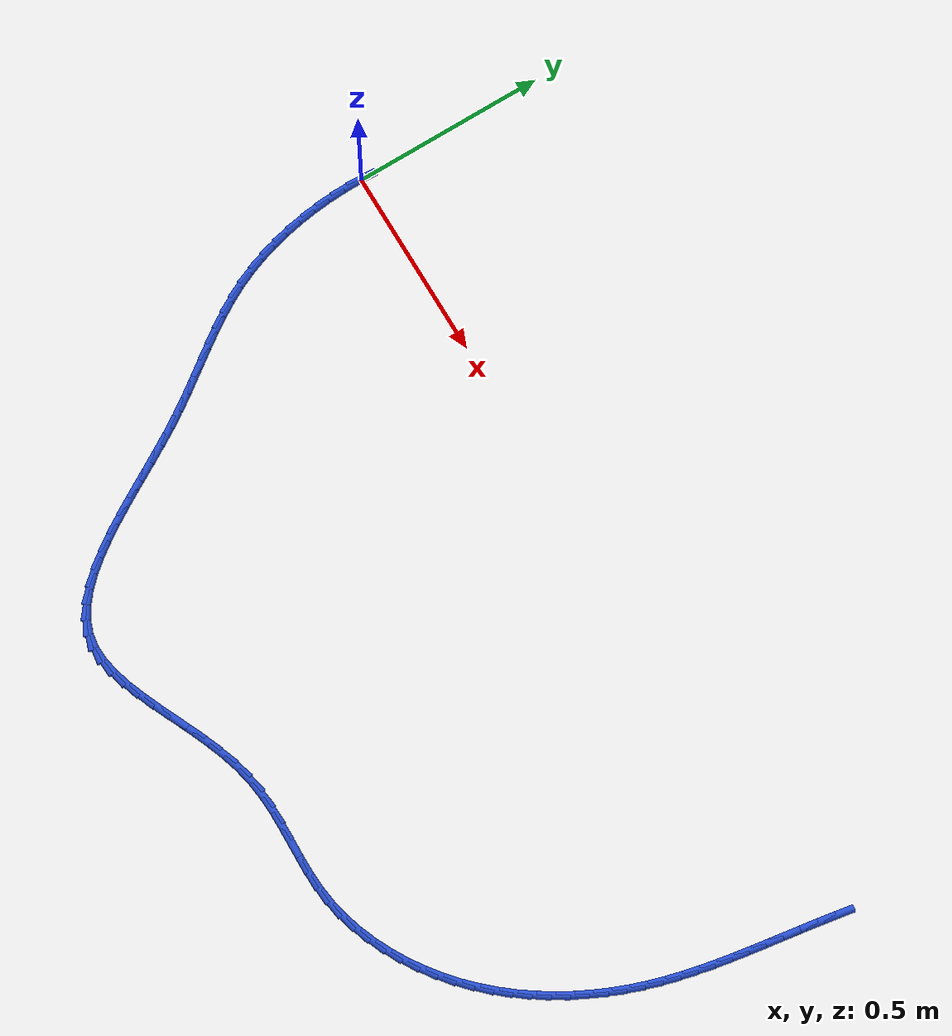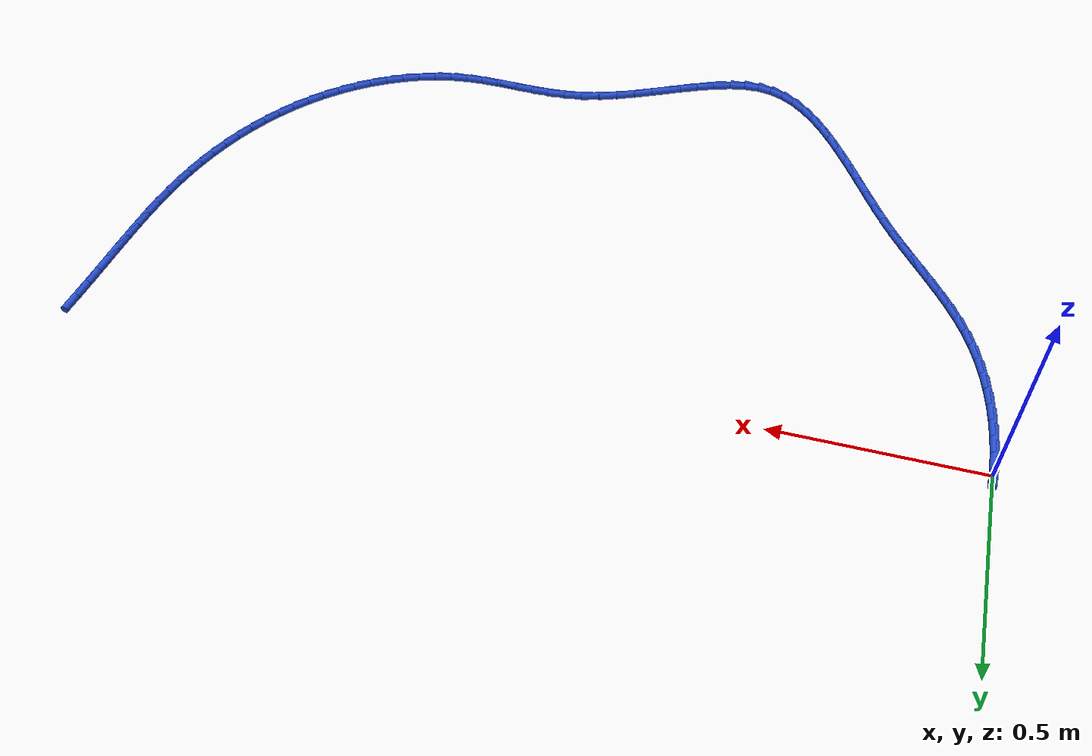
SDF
<sdf version="1.6">
 <world name="default">
  <model name="ground_plane">
   <static>1</static>
   <link name="link">
    <collision name="collision">
     <geometry><plane><normal>0 0 1</normal><size>100 100</size></plane></geometry>
     <surface><friction><ode><mu>100</mu><mu2>50</mu2></ode></friction></surface>
    </collision>
    <visual name="visual">
     <cast_shadows>0</cast_shadows>
     <geometry><plane><normal>0 0 1</normal><size>100 100</size></plane></geometry>
     <material>
      <script><uri>file://media/materials/scripts/gazebo.material</uri><name>Gazebo/WhiteGlow</name></script>
     </material>
    </visual>
   </link>
  </model>
  <model name="line">
   <link name="link_0">
    <pose>-2.0816681711721685e-17 0.0 0.01 0 1.57 1.5288816077750744</pose>
    <collision name="collision">
     <geometry><cylinder><radius>0.01</radius><length>0.08</length></cylinder></geometry>
    </collision>
    <visual name="visual">
     <material>
      <script><name>Gazebo/Blue</name><uri>file://media/materials/scripts/gazebo.material</uri></script>
     </material>
     <geometry><cylinder><radius>0.01</radius><length>0.08</length></cylinder></geometry>
    </visual>
   </link>
   <link name="link_81">
    <pose>2.1590010995690694 0.039165669165966054 0.01 0 1.57 1.4089335555701574</pose>
    <collision name="collision">
     <geometry><cylinder><radius>0.01</radius><length>0.08</length></cylinder></geometry>
    </collision>
    <visual name="visual">
     <material>
      <script><name>Gazebo/Blue</name><uri>file://media/materials/scripts/gazebo.material</uri></script>
     </material>
     <geometry><cylinder><radius>0.01</radius><length>0.08</length></cylinder></geometry>
    </visual>
   </link>
   <link name="link_82">
    <pose>2.151374242094792 -0.007541390317497813 0.01 0 1.57 1.4194254931431838</pose>
    <collision name="collision">
     <geometry><cylinder><radius>0.01</radius><length>0.08</length></cylinder></geometry>
    </collision>
    <visual name="visual">
     <material>
      <script><name>Gazebo/Blue</name><uri>file://media/materials/scripts/gazebo.material</uri></script>
     </material>
     <geometry><cylinder><radius>0.01</radius><length>0.08</length></cylinder></geometry>
    </visual>
   </link>
   <link name="link_83">
    <pose>2.1443579429356454 -0.053538551705542614 0.01 0 1.57 1.4251304497442707</pose>
    <collision name="collision">
     <geometry><cylinder><radius>0.01</radius><length>0.08</length></cylinder></geometry>
    </collision>
    <visual name="visual">
     <material>
      <script><name>Gazebo/Blue</name><uri>file://media/materials/scripts/gazebo.material</uri></script>
     </material>
     <geometry><cylinder><radius>0.01</radius><length>0.08</length></cylinder></geometry>
    </visual>
   </link>
   <link name="link_84">
    <pose>2.13770742133233 -0.09887117817122365 0.01 0 1.57 1.4257908464061726</pose>
    <collision name="collision">
     <geometry><cylinder><radius>0.01</radius><length>0.08</length></cylinder></geometry>
    </collision>
    <visual name="visual">
     <material>
      <script><name>Gazebo/Blue</name><uri>file://media/materials/scripts/gazebo.material</uri></script>
     </material>
     <geometry><cylinder><radius>0.01</radius><length>0.08</length></cylinder></geometry>
    </visual>
   </link>
   <link name="link_85">
    <pose>2.131177896525548 -0.1435846328875956 0.01 0 1.57 1.4211894200970407</pose>
    <collision name="collision">
     <geometry><cylinder><radius>0.01</radius><length>0.08</length></cylinder></geometry>
    </collision>
    <visual name="visual">
     <material>
      <script><name>Gazebo/Blue</name><uri>file://media/materials/scripts/gazebo.material</uri></script>
     </material>
     <geometry><cylinder><radius>0.01</radius><length>0.08</length></cylinder></geometry>
    </visual>
   </link>
   <link name="link_86">
    <pose>2.124524587756 -0.18772427902771288 0.01 0 1.57 1.41115566940186</pose>
    <collision name="collision">
     <geometry><cylinder><radius>0.01</radius><length>0.08</length></cylinder></geometry>
    </collision>
    <visual name="visual">
     <material>
      <script><name>Gazebo/Blue</name><uri>file://media/materials/scripts/gazebo.material</uri></script>
     </material>
     <geometry><cylinder><radius>0.01</radius><length>0.08</length></cylinder></geometry>
    </visual>
   </link>
   <link name="link_87">
    <pose>2.1175027142643867 -0.23133547976463087 0.01 0 1.57 1.3955760839729843</pose>
    <collision name="collision">
     <geometry><cylinder><radius>0.01</radius><length>0.08</length></cylinder></geometry>
    </collision>
    <visual name="visual">
     <material>
      <script><name>Gazebo/Blue</name><uri>file://media/materials/scripts/gazebo.material</uri></script>
     </material>
     <geometry><cylinder><radius>0.01</radius><length>0.08</length></cylinder></geometry>
    </visual>
   </link>
   <link name="link_88">
    <pose>2.10986749529141 -0.27446359827140265 0.01 0 1.57 1.3744085524803331</pose>
    <collision name="collision">
     <geometry><cylinder><radius>0.01</radius><length>0.08</length></cylinder></geometry>
    </collision>
    <visual name="visual">
     <material>
      <script><name>Gazebo/Blue</name><uri>file://media/materials/scripts/gazebo.material</uri></script>
     </material>
     <geometry><cylinder><radius>0.01</radius><length>0.08</length></cylinder></geometry>
    </visual>
   </link>
   <link name="link_89">
    <pose>2.1013741500777714 -0.31715399772108344 0.01 0 1.57 1.3477005683270946</pose>
    <collision name="collision">
     <geometry><cylinder><radius>0.01</radius><length>0.08</length></cylinder></geometry>
    </collision>
    <visual name="visual">
     <material>
      <script><name>Gazebo/Blue</name><uri>file://media/materials/scripts/gazebo.material</uri></script>
     </material>
     <geometry><cylinder><radius>0.01</radius><length>0.08</length></cylinder></geometry>
    </visual>
   </link>
   <link name="link_90">
    <pose>2.0917778978641706 -0.35945204128672786 0.01 0 1.57 1.315609749769885</pose>
    <collision name="collision">
     <geometry><cylinder><radius>0.01</radius><length>0.08</length></cylinder></geometry>
    </collision>
    <visual name="visual">
     <material>
      <script><name>Gazebo/Blue</name><uri>file://media/materials/scripts/gazebo.material</uri></script>
     </material>
     <geometry><cylinder><radius>0.01</radius><length>0.08</length></cylinder></geometry>
    </visual>
   </link>
   <link name="link_91">
    <pose>2.0808339578913104 -0.4014030921413906 0.01 0 1.57 1.2784238359968025</pose>
    <collision name="collision">
     <geometry><cylinder><radius>0.01</radius><length>0.08</length></cylinder></geometry>
    </collision>
    <visual name="visual">
     <material>
      <script><name>Gazebo/Blue</name><uri>file://media/materials/scripts/gazebo.material</uri></script>
     </material>
     <geometry><cylinder><radius>0.01</radius><length>0.08</length></cylinder></geometry>
    </visual>
   </link>
   <link name="link_92">
    <pose>2.0682975493998907 -0.4430525134581267 0.01 0 1.57 1.236588635639744</pose>
    <collision name="collision">
     <geometry><cylinder><radius>0.01</radius><length>0.08</length></cylinder></geometry>
    </collision>
    <visual name="visual">
     <material>
      <script><name>Gazebo/Blue</name><uri>file://media/materials/scripts/gazebo.material</uri></script>
     </material>
     <geometry><cylinder><radius>0.01</radius><length>0.08</length></cylinder></geometry>
    </visual>
   </link>
   <link name="link_93">
    <pose>2.05392479256281 -0.4844447644938634 0.01 0 1.57 1.191686827820741</pose>
    <collision name="collision">
     <geometry><cylinder><radius>0.01</radius><length>0.08</length></cylinder></geometry>
    </collision>
    <visual name="visual">
     <material>
      <script><name>Gazebo/Blue</name><uri>file://media/materials/scripts/gazebo.material</uri></script>
     </material>
     <geometry><cylinder><radius>0.01</radius><length>0.08</length></cylinder></geometry>
    </visual>
   </link>
   <link name="link_94">
    <pose>2.0375515314099215 -0.5255443165994361 0.01 0 1.57 1.1456237448678201</pose>
    <collision name="collision">
     <geometry><cylinder><radius>0.01</radius><length>0.08</length></cylinder></geometry>
    </collision>
    <visual name="visual">
     <material>
      <script><name>Gazebo/Blue</name><uri>file://media/materials/scripts/gazebo.material</uri></script>
     </material>
     <geometry><cylinder><radius>0.01</radius><length>0.08</length></cylinder></geometry>
    </visual>
   </link>
   <link name="link_95">
    <pose>2.0191547630249858 -0.566174020566265 0.01 0 1.57 1.098286914952589</pose>
    <collision name="collision">
     <geometry><cylinder><radius>0.01</radius><length>0.08</length></cylinder></geometry>
    </collision>
    <visual name="visual">
     <material>
      <script><name>Gazebo/Blue</name><uri>file://media/materials/scripts/gazebo.material</uri></script>
     </material>
     <geometry><cylinder><radius>0.01</radius><length>0.08</length></cylinder></geometry>
    </visual>
   </link>
   <link name="link_96">
    <pose>1.9987259427390036 -0.6061422210521415 0.01 0 1.57 1.0493796912006637</pose>
    <collision name="collision">
     <geometry><cylinder><radius>0.01</radius><length>0.08</length></cylinder></geometry>
    </collision>
    <visual name="visual">
     <material>
      <script><name>Gazebo/Blue</name><uri>file://media/materials/scripts/gazebo.material</uri></script>
     </material>
     <geometry><cylinder><radius>0.01</radius><length>0.08</length></cylinder></geometry>
    </visual>
   </link>
   <link name="link_97">
    <pose>1.9762565258829754 -0.6452572627148556 0.01 0 1.57 0.9986258800181697</pose>
    <collision name="collision">
     <geometry><cylinder><radius>0.01</radius><length>0.08</length></cylinder></geometry>
    </collision>
    <visual name="visual">
     <material>
      <script><name>Gazebo/Blue</name><uri>file://media/materials/scripts/gazebo.material</uri></script>
     </material>
     <geometry><cylinder><radius>0.01</radius><length>0.08</length></cylinder></geometry>
    </visual>
   </link>
   <link name="link_98">
    <pose>1.9517379677879008 -0.6833274902121982 0.01 0 1.57 0.9457738173689354</pose>
    <collision name="collision">
     <geometry><cylinder><radius>0.01</radius><length>0.08</length></cylinder></geometry>
    </collision>
    <visual name="visual">
     <material>
      <script><name>Gazebo/Blue</name><uri>file://media/materials/scripts/gazebo.material</uri></script>
     </material>
     <geometry><cylinder><radius>0.01</radius><length>0.08</length></cylinder></geometry>
    </visual>
   </link>
   <link name="link_99">
    <pose>1.9251617237847802 -0.7201612482019606 0.01 0 1.57 0.8906032750269344</pose>
    <collision name="collision">
     <geometry><cylinder><radius>0.01</radius><length>0.08</length></cylinder></geometry>
    </collision>
    <visual name="visual">
     <material>
      <script><name>Gazebo/Blue</name><uri>file://media/materials/scripts/gazebo.material</uri></script>
     </material>
     <geometry><cylinder><radius>0.01</radius><length>0.08</length></cylinder></geometry>
    </visual>
   </link>
   <link name="link_100">
    <pose>1.8965192492046137 -0.7555668813419335 0.01 0 1.57 0.8329352769392533</pose>
    <collision name="collision">
     <geometry><cylinder><radius>0.01</radius><length>0.08</length></cylinder></geometry>
    </collision>
    <visual name="visual">
     <material>
      <script><name>Gazebo/Blue</name><uri>file://media/materials/scripts/gazebo.material</uri></script>
     </material>
     <geometry><cylinder><radius>0.01</radius><length>0.08</length></cylinder></geometry>
    </visual>
   </link>
   <link name="link_101">
    <pose>1.8658019993784003 -0.7893527342899083 0.01 0 1.57 0.7726446674631863</pose>
    <collision name="collision">
     <geometry><cylinder><radius>0.01</radius><length>0.08</length></cylinder></geometry>
    </collision>
    <visual name="visual">
     <material>
      <script><name>Gazebo/Blue</name><uri>file://media/materials/scripts/gazebo.material</uri></script>
     </material>
     <geometry><cylinder><radius>0.01</radius><length>0.08</length></cylinder></geometry>
    </visual>
   </link>
   <link name="link_102">
    <pose>1.8330014296371424 -0.8213271517036749 0.01 0 1.57 0.7100305394505303</pose>
    <collision name="collision">
     <geometry><cylinder><radius>0.01</radius><length>0.08</length></cylinder></geometry>
    </collision>
    <visual name="visual">
     <material>
      <script><name>Gazebo/Blue</name><uri>file://media/materials/scripts/gazebo.material</uri></script>
     </material>
     <geometry><cylinder><radius>0.01</radius><length>0.08</length></cylinder></geometry>
    </visual>
   </link>
   <link name="link_103">
    <pose>1.7981407699879932 -0.8512927391685631 0.01 0 1.57 0.6464957723707402</pose>
    <collision name="collision">
     <geometry><cylinder><radius>0.01</radius><length>0.08</length></cylinder></geometry>
    </collision>
    <visual name="visual">
     <material>
      <script><name>Gazebo/Blue</name><uri>file://media/materials/scripts/gazebo.material</uri></script>
     </material>
     <geometry><cylinder><radius>0.01</radius><length>0.08</length></cylinder></geometry>
    </visual>
   </link>
   <link name="link_104">
    <pose>1.7613944774682404 -0.8790247879747101 0.01 0 1.57 0.5818012767535212</pose>
    <collision name="collision">
     <geometry><cylinder><radius>0.01</radius><length>0.08</length></cylinder></geometry>
    </collision>
    <visual name="visual">
     <material>
      <script><name>Gazebo/Blue</name><uri>file://media/materials/scripts/gazebo.material</uri></script>
     </material>
     <geometry><cylinder><radius>0.01</radius><length>0.08</length></cylinder></geometry>
    </visual>
   </link>
   <link name="link_105">
    <pose>1.722981950960954 -0.9042904721144318 0.01 0 1.57 0.5151600913907749</pose>
    <collision name="collision">
     <geometry><cylinder><radius>0.01</radius><length>0.08</length></cylinder></geometry>
    </collision>
    <visual name="visual">
     <material>
      <script><name>Gazebo/Blue</name><uri>file://media/materials/scripts/gazebo.material</uri></script>
     </material>
     <geometry><cylinder><radius>0.01</radius><length>0.08</length></cylinder></geometry>
    </visual>
   </link>
   <link name="link_106">
    <pose>1.6831225966959757 -0.9268569642530877 0.01 0 1.57 0.4457940355793056</pose>
    <collision name="collision">
     <geometry><cylinder><radius>0.01</radius><length>0.08</length></cylinder></geometry>
    </collision>
    <visual name="visual">
     <material>
      <script><name>Gazebo/Blue</name><uri>file://media/materials/scripts/gazebo.material</uri></script>
     </material>
     <geometry><cylinder><radius>0.01</radius><length>0.08</length></cylinder></geometry>
    </visual>
   </link>
   <link name="link_107">
    <pose>1.6420358209031483 -0.9464914370560352 0.01 0 1.57 0.37294139570609786</pose>
    <collision name="collision">
     <geometry><cylinder><radius>0.01</radius><length>0.08</length></cylinder></geometry>
    </collision>
    <visual name="visual">
     <material>
      <script><name>Gazebo/Blue</name><uri>file://media/materials/scripts/gazebo.material</uri></script>
     </material>
     <geometry><cylinder><radius>0.01</radius><length>0.08</length></cylinder></geometry>
    </visual>
   </link>
   <link name="link_108">
    <pose>1.599941029812313 -0.9629610631886335 0.01 0 1.57 0.2958779203071806</pose>
    <collision name="collision">
     <geometry><cylinder><radius>0.01</radius><length>0.08</length></cylinder></geometry>
    </collision>
    <visual name="visual">
     <material>
      <script><name>Gazebo/Blue</name><uri>file://media/materials/scripts/gazebo.material</uri></script>
     </material>
     <geometry><cylinder><radius>0.01</radius><length>0.08</length></cylinder></geometry>
    </visual>
   </link>
   <link name="link_109">
    <pose>1.5570576296533105 -0.9760330153162409 0.01 0 1.57 0.21395592045569675</pose>
    <collision name="collision">
     <geometry><cylinder><radius>0.01</radius><length>0.08</length></cylinder></geometry>
    </collision>
    <visual name="visual">
     <material>
      <script><name>Gazebo/Blue</name><uri>file://media/materials/scripts/gazebo.material</uri></script>
     </material>
     <geometry><cylinder><radius>0.01</radius><length>0.08</length></cylinder></geometry>
    </visual>
   </link>
   <link name="link_110">
    <pose>1.5136050266559835 -0.9854744661042159 0.01 0 1.57 0.12707546292350871</pose>
    <collision name="collision">
     <geometry><cylinder><radius>0.01</radius><length>0.08</length></cylinder></geometry>
    </collision>
    <visual name="visual">
     <material>
      <script><name>Gazebo/Blue</name><uri>file://media/materials/scripts/gazebo.material</uri></script>
     </material>
     <geometry><cylinder><radius>0.01</radius><length>0.08</length></cylinder></geometry>
    </visual>
   </link>
   <link name="link_111">
    <pose>1.4697997216382932 -0.9910712036956041 0.01 0 1.57 0.04863886634835172</pose>
    <collision name="collision">
     <geometry><cylinder><radius>0.01</radius><length>0.08</length></cylinder></geometry>
    </collision>
    <visual name="visual">
     <material>
      <script><name>Gazebo/Blue</name><uri>file://media/materials/scripts/gazebo.material</uri></script>
     </material>
     <geometry><cylinder><radius>0.01</radius><length>0.08</length></cylinder></geometry>
    </visual>
   </link>
   <link name="link_112">
    <pose>1.425763674272286 -0.9932147577479749 0.01 0 1.57 -0.004369041545981098</pose>
    <collision name="collision">
     <geometry><cylinder><radius>0.01</radius><length>0.08</length></cylinder></geometry>
    </collision>
    <visual name="visual">
     <material>
      <script><name>Gazebo/Blue</name><uri>file://media/materials/scripts/gazebo.material</uri></script>
     </material>
     <geometry><cylinder><radius>0.01</radius><length>0.08</length></cylinder></geometry>
    </visual>
   </link>
   <link name="link_113">
    <pose>1.3815057313543135 -0.9930213917262677 0.01 0 1.57 -0.03082299035357127</pose>
    <collision name="collision">
     <geometry><cylinder><radius>0.01</radius><length>0.08</length></cylinder></geometry>
    </collision>
    <visual name="visual">
     <material>
      <script><name>Gazebo/Blue</name><uri>file://media/materials/scripts/gazebo.material</uri></script>
     </material>
     <geometry><cylinder><radius>0.01</radius><length>0.08</length></cylinder></geometry>
    </visual>
   </link>
   <link name="link_114">
    <pose>1.337028082428873 -0.9916500232623652 0.01 0 1.57 -0.03109967165181631</pose>
    <collision name="collision">
     <geometry><cylinder><radius>0.01</radius><length>0.08</length></cylinder></geometry>
    </collision>
    <visual name="visual">
     <material>
      <script><name>Gazebo/Blue</name><uri>file://media/materials/scripts/gazebo.material</uri></script>
     </material>
     <geometry><cylinder><radius>0.01</radius><length>0.08</length></cylinder></geometry>
    </visual>
   </link>
   <link name="link_115">
    <pose>1.292332917040464 -0.9902595699881501 0.01 0 1.57 -0.005580385301238787</pose>
    <collision name="collision">
     <geometry><cylinder><radius>0.01</radius><length>0.08</length></cylinder></geometry>
    </collision>
    <visual name="visual">
     <material>
      <script><name>Gazebo/Blue</name><uri>file://media/materials/scripts/gazebo.material</uri></script>
     </material>
     <geometry><cylinder><radius>0.01</radius><length>0.08</length></cylinder></geometry>
    </visual>
   </link>
   <link name="link_116">
    <pose>1.2474224247335834 -0.9900089495355052 0.01 0 1.57 0.0453581691002773</pose>
    <collision name="collision">
     <geometry><cylinder><radius>0.01</radius><length>0.08</length></cylinder></geometry>
    </collision>
    <visual name="visual">
     <material>
      <script><name>Gazebo/Blue</name><uri>file://media/materials/scripts/gazebo.material</uri></script>
     </material>
     <geometry><cylinder><radius>0.01</radius><length>0.08</length></cylinder></geometry>
    </visual>
   </link>
   <link name="link_117">
    <pose>1.2022987950527315 -0.992057079536313 0.01 0 1.57 0.12085621920830597</pose>
    <collision name="collision">
     <geometry><cylinder><radius>0.01</radius><length>0.08</length></cylinder></geometry>
    </collision>
    <visual name="visual">
     <material>
      <script><name>Gazebo/Blue</name><uri>file://media/materials/scripts/gazebo.material</uri></script>
     </material>
     <geometry><cylinder><radius>0.01</radius><length>0.08</length></cylinder></geometry>
    </visual>
   </link>
   <link name="link_118">
    <pose>1.1569642175424044 -0.9975628776224555 0.01 0 1.57 0.21632979802707036</pose>
    <collision name="collision">
     <geometry><cylinder><radius>0.01</radius><length>0.08</length></cylinder></geometry>
    </collision>
    <visual name="visual">
     <material>
      <script><name>Gazebo/Blue</name><uri>file://media/materials/scripts/gazebo.material</uri></script>
     </material>
     <geometry><cylinder><radius>0.01</radius><length>0.08</length></cylinder></geometry>
    </visual>
   </link>
   <link name="link_119">
    <pose>1.1114304342638721 -1.0075697839776083 0.01 0 1.57 0.3024851590970225</pose>
    <collision name="collision">
     <geometry><cylinder><radius>0.01</radius><length>0.08</length></cylinder></geometry>
    </collision>
    <visual name="visual">
     <material>
      <script><name>Gazebo/Blue</name><uri>file://media/materials/scripts/gazebo.material</uri></script>
     </material>
     <geometry><cylinder><radius>0.01</radius><length>0.08</length></cylinder></geometry>
    </visual>
   </link>
   <link name="link_120">
    <pose>1.065818184696807 -1.0218036023927601 0.01 0 1.57 0.3642572645516663</pose>
    <collision name="collision">
     <geometry><cylinder><radius>0.01</radius><length>0.08</length></cylinder></geometry>
    </collision>
    <visual name="visual">
     <material>
      <script><name>Gazebo/Blue</name><uri>file://media/materials/scripts/gazebo.material</uri></script>
     </material>
     <geometry><cylinder><radius>0.01</radius><length>0.08</length></cylinder></geometry>
    </visual>
   </link>
   <link name="link_121">
    <pose>1.0203175676263576 -1.0391516732676727 0.01 0 1.57 0.40425101694398835</pose>
    <collision name="collision">
     <geometry><cylinder><radius>0.01</radius><length>0.08</length></cylinder></geometry>
    </collision>
    <visual name="visual">
     <material>
      <script><name>Gazebo/Blue</name><uri>file://media/materials/scripts/gazebo.material</uri></script>
     </material>
     <geometry><cylinder><radius>0.01</radius><length>0.08</length></cylinder></geometry>
    </visual>
   </link>
   <link name="link_122">
    <pose>0.9751197953811716 -1.0584878757160205 0.01 0 1.57 0.4243697630788925</pose>
    <collision name="collision">
     <geometry><cylinder><radius>0.01</radius><length>0.08</length></cylinder></geometry>
    </collision>
    <visual name="visual">
     <material>
      <script><name>Gazebo/Blue</name><uri>file://media/materials/scripts/gazebo.material</uri></script>
     </material>
     <geometry><cylinder><radius>0.01</radius><length>0.08</length></cylinder></geometry>
    </visual>
   </link>
   <link name="link_123">
    <pose>0.9304160802898921 -1.078686088851478 0.01 0 1.57 0.42522805415831066</pose>
    <collision name="collision">
     <geometry><cylinder><radius>0.01</radius><length>0.08</length></cylinder></geometry>
    </collision>
    <visual name="visual">
     <material>
      <script><name>Gazebo/Blue</name><uri>file://media/materials/scripts/gazebo.material</uri></script>
     </material>
     <geometry><cylinder><radius>0.01</radius><length>0.08</length></cylinder></geometry>
    </visual>
   </link>
   <link name="link_124">
    <pose>0.8863976346811637 -1.0986201917877185 0.01 0 1.57 0.4059577381393803</pose>
    <collision name="collision">
     <geometry><cylinder><radius>0.01</radius><length>0.08</length></cylinder></geometry>
    </collision>
    <visual name="visual">
     <material>
      <script><name>Gazebo/Blue</name><uri>file://media/materials/scripts/gazebo.material</uri></script>
     </material>
     <geometry><cylinder><radius>0.01</radius><length>0.08</length></cylinder></geometry>
    </visual>
   </link>
   <link name="link_125">
    <pose>0.8432556708836308 -1.1171640636384177 0.01 0 1.57 0.3639629057783206</pose>
    <collision name="collision">
     <geometry><cylinder><radius>0.01</radius><length>0.08</length></cylinder></geometry>
    </collision>
    <visual name="visual">
     <material>
      <script><name>Gazebo/Blue</name><uri>file://media/materials/scripts/gazebo.material</uri></script>
     </material>
     <geometry><cylinder><radius>0.01</radius><length>0.08</length></cylinder></geometry>
    </visual>
   </link>
   <link name="link_126">
    <pose>0.8011814012259374 -1.1331915835172495 0.01 0 1.57 0.2946105072904056</pose>
    <collision name="collision">
     <geometry><cylinder><radius>0.01</radius><length>0.08</length></cylinder></geometry>
    </collision>
    <visual name="visual">
     <material>
      <script><name>Gazebo/Blue</name><uri>file://media/materials/scripts/gazebo.material</uri></script>
     </material>
     <geometry><cylinder><radius>0.01</radius><length>0.08</length></cylinder></geometry>
    </visual>
   </link>
   <link name="link_127">
    <pose>0.7603660380367289 -1.145576630537887 0.01 0 1.57 0.19112015199573218</pose>
    <collision name="collision">
     <geometry><cylinder><radius>0.01</radius><length>0.08</length></cylinder></geometry>
    </collision>
    <visual name="visual">
     <material>
      <script><name>Gazebo/Blue</name><uri>file://media/materials/scripts/gazebo.material</uri></script>
     </material>
     <geometry><cylinder><radius>0.01</radius><length>0.08</length></cylinder></geometry>
    </visual>
   </link>
   <link name="link_128">
    <pose>0.7210007936446493 -1.153193083814005 0.01 0 1.57 0.04560885908918106</pose>
    <collision name="collision">
     <geometry><cylinder><radius>0.01</radius><length>0.08</length></cylinder></geometry>
    </collision>
    <visual name="visual">
     <material>
      <script><name>Gazebo/Blue</name><uri>file://media/materials/scripts/gazebo.material</uri></script>
     </material>
     <geometry><cylinder><radius>0.01</radius><length>0.08</length></cylinder></geometry>
    </visual>
   </link>
   <link name="link_129">
    <pose>0.6832768803783434 -1.154914822459279 0.01 0 1.57 -0.14608819776592744</pose>
    <collision name="collision">
     <geometry><cylinder><radius>0.01</radius><length>0.08</length></cylinder></geometry>
    </collision>
    <visual name="visual">
     <material>
      <script><name>Gazebo/Blue</name><uri>file://media/materials/scripts/gazebo.material</uri></script>
     </material>
     <geometry><cylinder><radius>0.01</radius><length>0.08</length></cylinder></geometry>
    </visual>
   </link>
   <link name="link_130">
    <pose>0.6473819329845921 -1.1496333688791796 0.01 0 1.57 -0.35529377994868694</pose>
    <collision name="collision">
     <geometry><cylinder><radius>0.01</radius><length>0.08</length></cylinder></geometry>
    </collision>
    <visual name="visual">
     <material>
      <script><name>Gazebo/Blue</name><uri>file://media/materials/scripts/gazebo.material</uri></script>
     </material>
     <geometry><cylinder><radius>0.01</radius><length>0.08</length></cylinder></geometry>
    </visual>
   </link>
   <link name="link_131">
    <pose>0.6133483954206016 -1.137005588241339 0.01 0 1.57 -0.5373175891952747</pose>
    <collision name="collision">
     <geometry><cylinder><radius>0.01</radius><length>0.08</length></cylinder></geometry>
    </collision>
    <visual name="visual">
     <material>
      <script><name>Gazebo/Blue</name><uri>file://media/materials/scripts/gazebo.material</uri></script>
     </material>
     <geometry><cylinder><radius>0.01</radius><length>0.08</length></cylinder></geometry>
    </visual>
   </link>
   <link name="link_132">
    <pose>0.5809972628114963 -1.1177311320388212 0.01 0 1.57 -0.6836923732522359</pose>
    <collision name="collision">
     <geometry><cylinder><radius>0.01</radius><length>0.08</length></cylinder></geometry>
    </collision>
    <visual name="visual">
     <material>
      <script><name>Gazebo/Blue</name><uri>file://media/materials/scripts/gazebo.material</uri></script>
     </material>
     <geometry><cylinder><radius>0.01</radius><length>0.08</length></cylinder></geometry>
    </visual>
   </link>
   <link name="link_133">
    <pose>0.550134362518805 -1.0925844534853058 0.01 0 1.57 -0.7966929503154708</pose>
    <collision name="collision">
     <geometry><cylinder><radius>0.01</radius><length>0.08</length></cylinder></geometry>
    </collision>
    <visual name="visual">
     <material>
      <script><name>Gazebo/Blue</name><uri>file://media/materials/scripts/gazebo.material</uri></script>
     </material>
     <geometry><cylinder><radius>0.01</radius><length>0.08</length></cylinder></geometry>
    </visual>
   </link>
   <link name="link_134">
    <pose>0.5205655219040579 -1.0623400057944736 0.01 0 1.57 -0.8818480897017545</pose>
    <collision name="collision">
     <geometry><cylinder><radius>0.01</radius><length>0.08</length></cylinder></geometry>
    </collision>
    <visual name="visual">
     <material>
      <script><name>Gazebo/Blue</name><uri>file://media/materials/scripts/gazebo.material</uri></script>
     </material>
     <geometry><cylinder><radius>0.01</radius><length>0.08</length></cylinder></geometry>
    </visual>
   </link>
   <link name="link_135">
    <pose>0.4920965683287846 -1.0277722421800062 0.01 0 1.57 -0.9447155855715328</pose>
    <collision name="collision">
     <geometry><cylinder><radius>0.01</radius><length>0.08</length></cylinder></geometry>
    </collision>
    <visual name="visual">
     <material>
      <script><name>Gazebo/Blue</name><uri>file://media/materials/scripts/gazebo.material</uri></script>
     </material>
     <geometry><cylinder><radius>0.01</radius><length>0.08</length></cylinder></geometry>
    </visual>
   </link>
   <link name="link_136">
    <pose>0.4645333291545146 -0.9896556158555831 0.01 0 1.57 -0.9897502032657819</pose>
    <collision name="collision">
     <geometry><cylinder><radius>0.01</radius><length>0.08</length></cylinder></geometry>
    </collision>
    <visual name="visual">
     <material>
      <script><name>Gazebo/Blue</name><uri>file://media/materials/scripts/gazebo.material</uri></script>
     </material>
     <geometry><cylinder><radius>0.01</radius><length>0.08</length></cylinder></geometry>
    </visual>
   </link>
   <link name="link_137">
    <pose>0.43768163174277874 -0.9487645800348868 0.01 0 1.57 -1.020158801034141</pose>
    <collision name="collision">
     <geometry><cylinder><radius>0.01</radius><length>0.08</length></cylinder></geometry>
    </collision>
    <visual name="visual">
     <material>
      <script><name>Gazebo/Blue</name><uri>file://media/materials/scripts/gazebo.material</uri></script>
     </material>
     <geometry><cylinder><radius>0.01</radius><length>0.08</length></cylinder></geometry>
    </visual>
   </link>
   <link name="link_138">
    <pose>0.4113473034551061 -0.9058735879315974 0.01 0 1.57 -1.038058204549021</pose>
    <collision name="collision">
     <geometry><cylinder><radius>0.01</radius><length>0.08</length></cylinder></geometry>
    </collision>
    <visual name="visual">
     <material>
      <script><name>Gazebo/Blue</name><uri>file://media/materials/scripts/gazebo.material</uri></script>
     </material>
     <geometry><cylinder><radius>0.01</radius><length>0.08</length></cylinder></geometry>
    </visual>
   </link>
   <link name="link_139">
    <pose>0.38533617165302686 -0.8617570927593958 0.01 0 1.57 -1.0446597924616496</pose>
    <collision name="collision">
     <geometry><cylinder><radius>0.01</radius><length>0.08</length></cylinder></geometry>
    </collision>
    <visual name="visual">
     <material>
      <script><name>Gazebo/Blue</name><uri>file://media/materials/scripts/gazebo.material</uri></script>
     </material>
     <geometry><cylinder><radius>0.01</radius><length>0.08</length></cylinder></geometry>
    </visual>
   </link>
   <link name="link_140">
    <pose>0.3594540636980706 -0.8171895477319628 0.01 0 1.57 -1.0403949373067045</pose>
    <collision name="collision">
     <geometry><cylinder><radius>0.01</radius><length>0.08</length></cylinder></geometry>
    </collision>
    <visual name="visual">
     <material>
      <script><name>Gazebo/Blue</name><uri>file://media/materials/scripts/gazebo.material</uri></script>
     </material>
     <geometry><cylinder><radius>0.01</radius><length>0.08</length></cylinder></geometry>
    </visual>
   </link>
   <link name="link_141">
    <pose>0.3335068069517667 -0.7729454060629786 0.01 0 1.57 -1.0249614579978206</pose>
    <collision name="collision">
     <geometry><cylinder><radius>0.01</radius><length>0.08</length></cylinder></geometry>
    </collision>
    <visual name="visual">
     <material>
      <script><name>Gazebo/Blue</name><uri>file://media/materials/scripts/gazebo.material</uri></script>
     </material>
     <geometry><cylinder><radius>0.01</radius><length>0.08</length></cylinder></geometry>
    </visual>
   </link>
   <link name="link_142">
    <pose>0.30730022877564594 -0.7297991209661251 0.01 0 1.57 -0.9976510662692564</pose>
    <collision name="collision">
     <geometry><cylinder><radius>0.01</radius><length>0.08</length></cylinder></geometry>
    </collision>
    <visual name="visual">
     <material>
      <script><name>Gazebo/Blue</name><uri>file://media/materials/scripts/gazebo.material</uri></script>
     </material>
     <geometry><cylinder><radius>0.01</radius><length>0.08</length></cylinder></geometry>
    </visual>
   </link>
   <link name="link_143">
    <pose>0.28064860879723885 -0.6885053482615885 0.01 0 1.57 -0.9674940567342716</pose>
    <collision name="collision">
     <geometry><cylinder><radius>0.01</radius><length>0.08</length></cylinder></geometry>
    </collision>
    <visual name="visual">
     <material>
      <script><name>Gazebo/Blue</name><uri>file://media/materials/scripts/gazebo.material</uri></script>
     </material>
     <geometry><cylinder><radius>0.01</radius><length>0.08</length></cylinder></geometry>
    </visual>
   </link>
   <link name="link_144">
    <pose>0.25360628991820827 -0.6492564534794727 0.01 0 1.57 -0.9466188371662297</pose>
    <collision name="collision">
     <geometry><cylinder><radius>0.01</radius><length>0.08</length></cylinder></geometry>
    </collision>
    <visual name="visual">
     <material>
      <script><name>Gazebo/Blue</name><uri>file://media/materials/scripts/gazebo.material</uri></script>
     </material>
     <geometry><cylinder><radius>0.01</radius><length>0.08</length></cylinder></geometry>
    </visual>
   </link>
   <link name="link_145">
    <pose>0.22649617194734875 -0.6116157724002863 0.01 0 1.57 -0.9367576822646155</pose>
    <collision name="collision">
     <geometry><cylinder><radius>0.01</radius><length>0.08</length></cylinder></geometry>
    </collision>
    <visual name="visual">
     <material>
      <script><name>Gazebo/Blue</name><uri>file://media/materials/scripts/gazebo.material</uri></script>
     </material>
     <geometry><cylinder><radius>0.01</radius><length>0.08</length></cylinder></geometry>
    </visual>
   </link>
   <link name="link_146">
    <pose>0.19965532816868334 -0.5751134428590087 0.01 0 1.57 -0.9388401409076308</pose>
    <collision name="collision">
     <geometry><cylinder><radius>0.01</radius><length>0.08</length></cylinder></geometry>
    </collision>
    <visual name="visual">
     <material>
      <script><name>Gazebo/Blue</name><uri>file://media/materials/scripts/gazebo.material</uri></script>
     </material>
     <geometry><cylinder><radius>0.01</radius><length>0.08</length></cylinder></geometry>
    </visual>
   </link>
   <link name="link_147">
    <pose>0.17342083186623652 -0.5392796026906215 0.01 0 1.57 -0.9535756433300943</pose>
    <collision name="collision">
     <geometry><cylinder><radius>0.01</radius><length>0.08</length></cylinder></geometry>
    </collision>
    <visual name="visual">
     <material>
      <script><name>Gazebo/Blue</name><uri>file://media/materials/scripts/gazebo.material</uri></script>
     </material>
     <geometry><cylinder><radius>0.01</radius><length>0.08</length></cylinder></geometry>
    </visual>
   </link>
   <link name="link_148">
    <pose>0.1481297563240314 -0.5036443897301036 0.01 0 1.57 -0.9813885106985564</pose>
    <collision name="collision">
     <geometry><cylinder><radius>0.01</radius><length>0.08</length></cylinder></geometry>
    </collision>
    <visual name="visual">
     <material>
      <script><name>Gazebo/Blue</name><uri>file://media/materials/scripts/gazebo.material</uri></script>
     </material>
     <geometry><cylinder><radius>0.01</radius><length>0.08</length></cylinder></geometry>
    </visual>
   </link>
   <link name="link_149">
    <pose>0.12411917482609144 -0.4677379418124355 0.01 0 1.57 -1.0223007229271746</pose>
    <collision name="collision">
     <geometry><cylinder><radius>0.01</radius><length>0.08</length></cylinder></geometry>
    </collision>
    <visual name="visual">
     <material>
      <script><name>Gazebo/Blue</name><uri>file://media/materials/scripts/gazebo.material</uri></script>
     </material>
     <geometry><cylinder><radius>0.01</radius><length>0.08</length></cylinder></geometry>
    </visual>
   </link>
   <link name="link_150">
    <pose>0.10172616065644019 -0.431090396772597 0.01 0 1.57 -1.0757697972483622</pose>
    <collision name="collision">
     <geometry><cylinder><radius>0.01</radius><length>0.08</length></cylinder></geometry>
    </collision>
    <visual name="visual">
     <material>
      <script><name>Gazebo/Blue</name><uri>file://media/materials/scripts/gazebo.material</uri></script>
     </material>
     <geometry><cylinder><radius>0.01</radius><length>0.08</length></cylinder></geometry>
    </visual>
   </link>
   <link name="link_151">
    <pose>0.0812877870991009 -0.3932318924455675 0.01 0 1.57 -1.1395817805443198</pose>
    <collision name="collision">
     <geometry><cylinder><radius>0.01</radius><length>0.08</length></cylinder></geometry>
    </collision>
    <visual name="visual">
     <material>
      <script><name>Gazebo/Blue</name><uri>file://media/materials/scripts/gazebo.material</uri></script>
     </material>
     <geometry><cylinder><radius>0.01</radius><length>0.08</length></cylinder></geometry>
    </visual>
   </link>
   <link name="link_152">
    <pose>0.0631173365349269 -0.35373879862887014 0.01 0 1.57 -1.2036869236975718</pose>
    <collision name="collision">
     <geometry><cylinder><radius>0.01</radius><length>0.08</length></cylinder></geometry>
    </collision>
    <visual name="visual">
     <material>
      <script><name>Gazebo/Blue</name><uri>file://media/materials/scripts/gazebo.material</uri></script>
     </material>
     <geometry><cylinder><radius>0.01</radius><length>0.08</length></cylinder></geometry>
    </visual>
   </link>
   <link name="link_153">
    <pose>0.04730548278739723 -0.3126200719122144 0.01 0 1.57 -1.2635626713500738</pose>
    <collision name="collision">
     <geometry><cylinder><radius>0.01</radius><length>0.08</length></cylinder></geometry>
    </collision>
    <visual name="visual">
     <material>
      <script><name>Gazebo/Blue</name><uri>file://media/materials/scripts/gazebo.material</uri></script>
     </material>
     <geometry><cylinder><radius>0.01</radius><length>0.08</length></cylinder></geometry>
    </visual>
   </link>
   <link name="link_154">
    <pose>0.03382134170706622 -0.2701208878977016 0.01 0 1.57 -1.3197757321442722</pose>
    <collision name="collision">
     <geometry><cylinder><radius>0.01</radius><length>0.08</length></cylinder></geometry>
    </collision>
    <visual name="visual">
     <material>
      <script><name>Gazebo/Blue</name><uri>file://media/materials/scripts/gazebo.material</uri></script>
     </material>
     <geometry><cylinder><radius>0.01</radius><length>0.08</length></cylinder></geometry>
    </visual>
   </link>
   <link name="link_155">
    <pose>0.02263279791471511 -0.22648881478969562 0.01 0 1.57 -1.3729346338800201</pose>
    <collision name="collision">
     <geometry><cylinder><radius>0.01</radius><length>0.08</length></cylinder></geometry>
    </collision>
    <visual name="visual">
     <material>
      <script><name>Gazebo/Blue</name><uri>file://media/materials/scripts/gazebo.material</uri></script>
     </material>
     <geometry><cylinder><radius>0.01</radius><length>0.08</length></cylinder></geometry>
    </visual>
   </link>
   <link name="link_156">
    <pose>0.013707736031124946 -0.1819714207925594 0.01 0 1.57 -1.4236303381730875</pose>
    <collision name="collision">
     <geometry><cylinder><radius>0.01</radius><length>0.08</length></cylinder></geometry>
    </collision>
    <visual name="visual">
     <material>
      <script><name>Gazebo/Blue</name><uri>file://media/materials/scripts/gazebo.material</uri></script>
     </material>
     <geometry><cylinder><radius>0.01</radius><length>0.08</length></cylinder></geometry>
    </visual>
   </link>
   <link name="link_157">
    <pose>0.007014040677077262 -0.13681627411065836 0.01 0 1.57 -1.4724341026438923</pose>
    <collision name="collision">
     <geometry><cylinder><radius>0.01</radius><length>0.08</length></cylinder></geometry>
    </collision>
    <visual name="visual">
     <material>
      <script><name>Gazebo/Blue</name><uri>file://media/materials/scripts/gazebo.material</uri></script>
     </material>
     <geometry><cylinder><radius>0.01</radius><length>0.08</length></cylinder></geometry>
    </visual>
   </link>
   <link name="link_158">
    <pose>0.00251959647335307 -0.09127094294835557 0.01 0 1.57 -1.5199010968433937</pose>
    <collision name="collision">
     <geometry><cylinder><radius>0.01</radius><length>0.08</length></cylinder></geometry>
    </collision>
    <visual name="visual">
     <material>
      <script><name>Gazebo/Blue</name><uri>file://media/materials/scripts/gazebo.material</uri></script>
     </material>
     <geometry><cylinder><radius>0.01</radius><length>0.08</length></cylinder></geometry>
    </visual>
   </link>
   <link name="link_159">
    <pose>0.00019228804073358283 -0.045582995510014844 0.01 0 1.57 -1.5665779357478937</pose>
    <collision name="collision">
     <geometry><cylinder><radius>0.01</radius><length>0.08</length></cylinder></geometry>
    </collision>
    <visual name="visual">
     <material>
      <script><name>Gazebo/Blue</name><uri>file://media/materials/scripts/gazebo.material</uri></script>
     </material>
     <geometry><cylinder><radius>0.01</radius><length>0.08</length></cylinder></geometry>
    </visual>
   </link>
   <link name="link_160">
    <pose>-6.938893903907228e-18 0.0 0.01 0 1.57 1.5285796188089393</pose>
    <collision name="collision">
     <geometry><cylinder><radius>0.01</radius><length>0.08</length></cylinder></geometry>
    </collision>
    <visual name="visual">
     <material>
      <script><name>Gazebo/Blue</name><uri>file://media/materials/scripts/gazebo.material</uri></script>
     </material>
     <geometry><cylinder><radius>0.01</radius><length>0.08</length></cylinder></geometry>
    </visual>
   </link>
  </model>
 </world>
</sdf>
